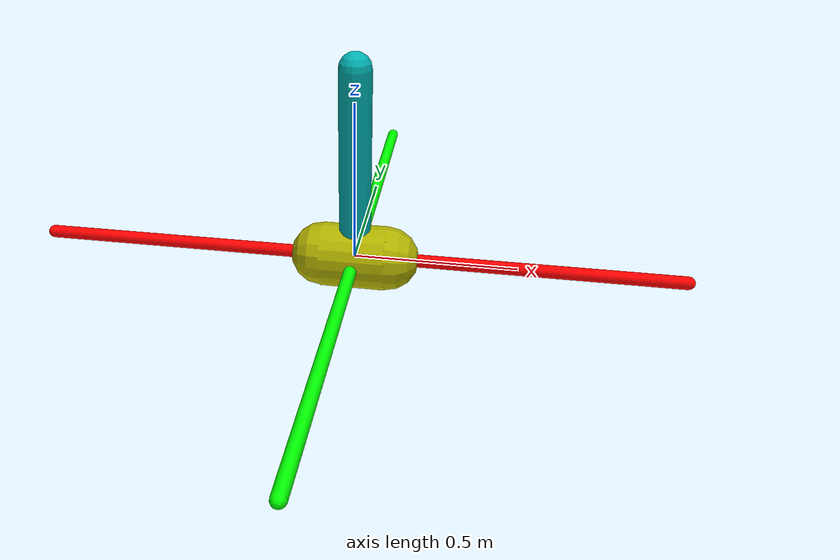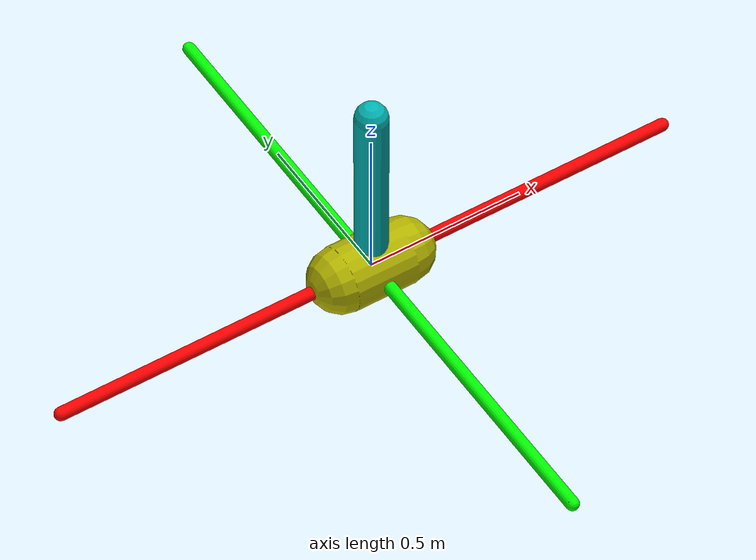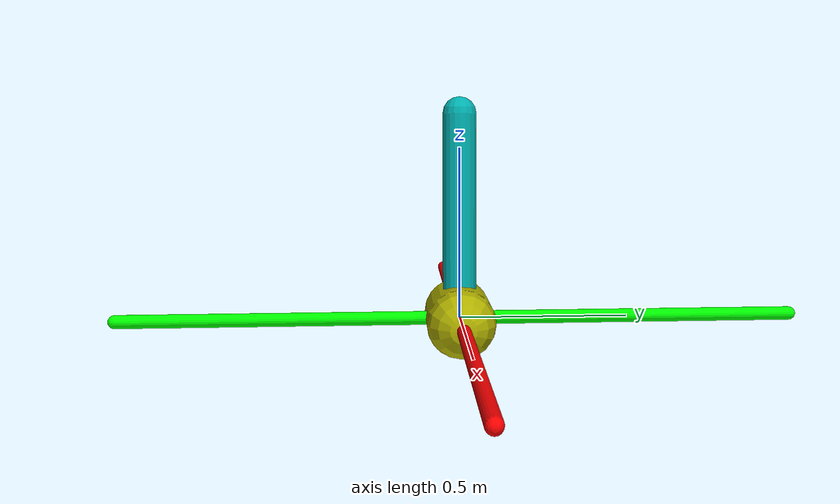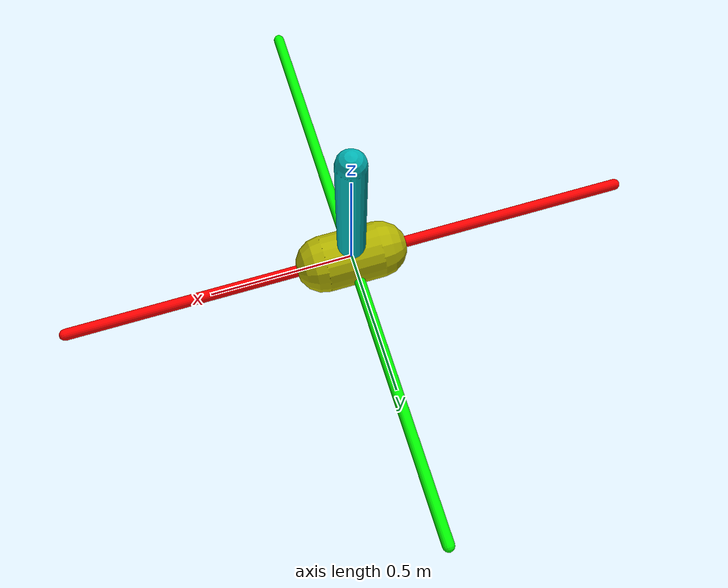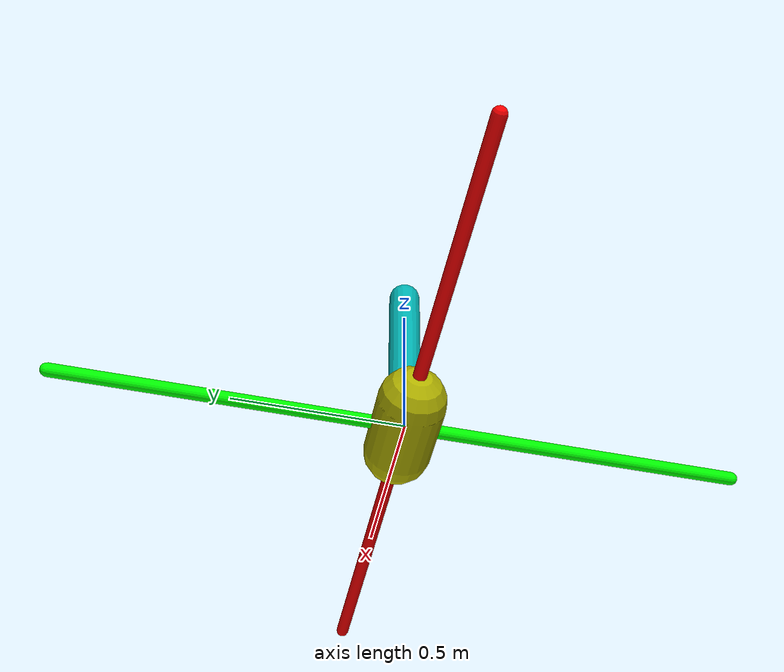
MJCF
<mujoco model="inverted pendulum">
	<compiler inertiafromgeom="true"/>
	<default>
		<joint armature="0" damping="1" limited="true"/>
		<geom contype="0" friction="1 0.1 0.1" rgba="0.7 0.7 0 1"/>
		<tendon/>
		<motor ctrlrange="-3 3"/>
	</default>
	<option gravity="0 0 -9.81" integrator="RK4" timestep="0.02"/>
	<size nstack="3000"/>
	<worldbody>
		<!--geom name="ground" type="plane" pos="0 0 0" /-->
		<!--geom name="rail" pos="0 0 0" quat="0.707 0 0.707 0" rgba="0.3 0.3 0.7 1" size="0.02 1" type="capsule"/-->
		<geom name="cart_rail_x" pos="0 0 0" quat="0.707 0 0.707 0" rgba="1 0 0 1" size="0.02 1" type="capsule"/>
		<geom name="cart_rail_y" pos="0 0 0" quat="0.707 0.707 0 0" rgba="0 1 0 1" size="0.02 1" type="capsule"/>
		<body name="cart" pos="0 0 0">
			<!--joint axis="1 0 0" limited="true" name="slider" pos="0 0 0" range="-1 1" type="slide"/-->
			<joint axis="1 0 0" limited="true" name="slider_x" pos="0 0 0" range="-1 1" type="slide"/>
			<joint axis="0 1 0" limited="true" name="slider_y" pos="0 0 0" range="-1 1" type="slide"/>
			<geom name="cart" pos="0 0 0" quat="0.707 0 0.707 0" size="0.1 0.1" type="capsule"/>
			<body name="pole" pos="0 0 0">
				<!--joint axis="0 1 0" name="hinge" pos="0 0 0" range="-90 90" type="hinge"/-->
				<joint name="ball" type="ball" pos="0 0 0" limited="false"/>
				<geom fromto="0 0 0 0.001 0 0.6" name="cpole" rgba="0 0.7 0.7 1" size="0.049 0.3" type="capsule"/>
			</body>
		</body>
	</worldbody>
	<actuator>
		<!--motor ctrllimited="true" ctrlrange="-3 3" gear="100" joint="slider" name="slide"/-->
		<motor ctrllimited="true" ctrlrange="-3 3" gear="100" joint="slider_x" name="slide_x"/>
		<motor ctrllimited="true" ctrlrange="-3 3" gear="100" joint="slider_y" name="slide_y"/>
	</actuator>
</mujoco>
